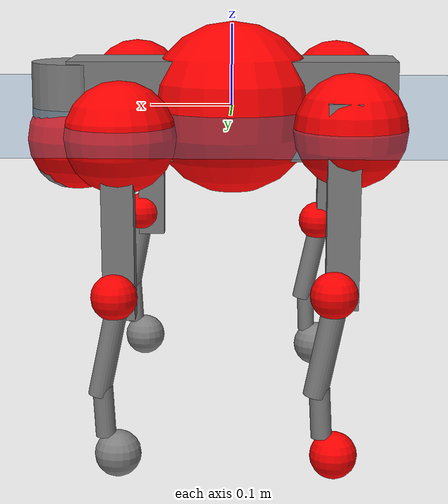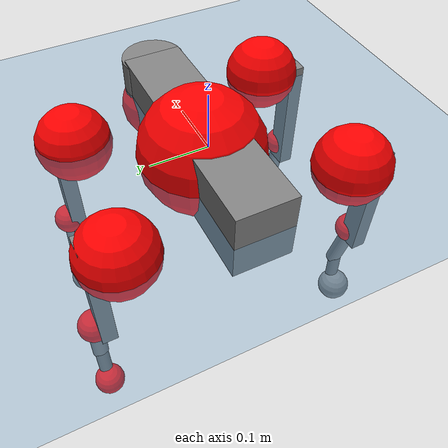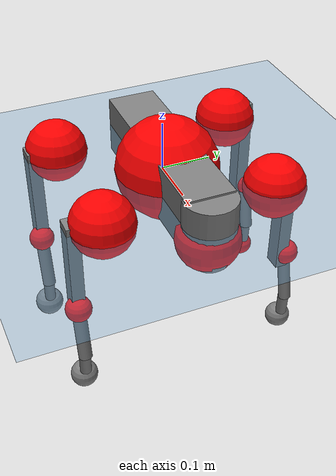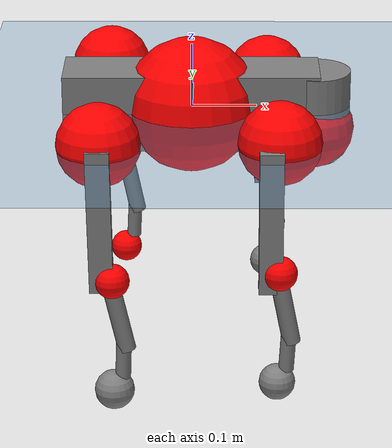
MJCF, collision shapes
<mujoco model="go2">
  <compiler angle="radian" assetdir="assets" balanceinertia="true" inertiafromgeom="false"/>

  <option timestep="0.005" density="1.2" viscosity="2e-05"/>

  <size nkey="1"/>

  <visual>
    <quality shadowsize="8192"/>
    <map shadowclip="0.5"/>
  </visual>

  <default>
    <default class="/">
      <geom contype="0" conaffinity="0" group="1" solref="-1000 -80"/>
      <site size="0.01 0.005 0.005" group="5"/>
      <general forcelimited="true" biastype="affine" gainprm="20" biasprm="0 -20 -0.5"/>
      <default class="go2">
        <joint armature="0.01" damping="0.01" frictionloss="0.2"/>
        <geom condim="1" margin="0.001"/>
        <default class="visual">
          <geom type="mesh" group="2"/>
        </default>
        <default class="collision">
          <geom group="3"/>
          <default class="foot">
            <geom size="0.022 0 0" condim="6" priority="1" friction="0.8 0.02 0.01" solimp="0.015 1 0.022"/>
          </default>
        </default>
        <default class="reward_collision_sphere">
          <geom group="5" rgba="1 0 0 1"/>
        </default>
      </default>
    </default>
  </default>

  <asset>
    <texture type="skybox" colorspace="auto" name="//unnamed_texture_0" builtin="gradient" rgb1="0.95 0.95 0.95" rgb2="0.95 0.95 0.95" width="100" height="600"/>
    <texture type="2d" colorspace="auto" name="texplane" builtin="checker" rgb1="0.345 0.575 0.748" rgb2="0.345 0.575 0.748" markrgb="1 1 1" width="512" height="512"/>
    <material name="MatPlane" class="/" texture="texplane" texuniform="true" texrepeat="2 2" specular="0.9"/>
    <material name="metal" class="/" rgba="0.9 0.95 0.95 1"/>
    <material name="black" class="/" rgba="0 0 0 1"/>
    <material name="white" class="/"/>
    <material name="gray" class="/" rgba="0.671705 0.692426 0.77427 1"/>
    <mesh name="base_0" class="/" file="base_0.obj"/>
    <mesh name="base_1" class="/" file="base_1.obj"/>
    <mesh name="base_2" class="/" file="base_2.obj"/>
    <mesh name="base_3" class="/" file="base_3.obj"/>
    <mesh name="base_4" class="/" file="base_4.obj"/>
    <mesh name="hip_0" class="/" file="hip_0.obj"/>
    <mesh name="hip_1" class="/" file="hip_1.obj"/>
    <mesh name="thigh_0" class="/" file="thigh_0.obj"/>
    <mesh name="thigh_1" class="/" file="thigh_1.obj"/>
    <mesh name="thigh_mirror_0" class="/" file="thigh_mirror_0.obj"/>
    <mesh name="thigh_mirror_1" class="/" file="thigh_mirror_1.obj"/>
    <mesh name="calf_0" class="/" file="calf_0.obj"/>
    <mesh name="calf_1" class="/" file="calf_1.obj"/>
    <mesh name="calf_mirror_0" class="/" file="calf_mirror_0.obj"/>
    <mesh name="calf_mirror_1" class="/" file="calf_mirror_1.obj"/>
    <mesh name="foot" class="/" file="foot.obj"/>
  </asset>

  <worldbody>
    <geom name="floor" class="/" size="100 100 0.125" type="plane" group="0" material="MatPlane"/>
    <light name="toplight_shadow" class="/" pos="0 0 5" dir="0.0990148 0.0990148 -0.990148" type="directional" ambient="0.04 0.04 0.04" diffuse="0.55 0.55 0.55" specular="0.12 0.12 0.12"/>
    <light name="toplight_fill" class="/" pos="0 0 5" dir="0.0990148 0.0990148 -0.990148" type="directional" castshadow="false" ambient="0.04 0.04 0.04" diffuse="0.3 0.3 0.3" specular="0.08 0.08 0.08"/>
    <body name="trunk" childclass="go2" pos="-0.000980606 0.0109229 -0.00132659" quat="1 2.70656e-05 4.74626e-05 -8.08278e-05">
      <inertial pos="0.00960554 0.011674 -0.00411598" quat="-0.0268473 0.758348 0.0278075 0.650703" mass="8.21867" diaginertia="0.017517 1.21389 0.0112359"/>
      <joint name="//unnamed_joint_0" type="free" armature="0" damping="0" frictionloss="0"/>
      <geom name="//unnamed_geom_1" class="visual" material="black" mesh="base_0"/>
      <geom name="//unnamed_geom_2" class="visual" material="black" mesh="base_1"/>
      <geom name="//unnamed_geom_3" class="visual" material="black" mesh="base_2"/>
      <geom name="//unnamed_geom_4" class="visual" material="white" mesh="base_3"/>
      <geom name="//unnamed_geom_5" class="visual" material="gray" mesh="base_4"/>
      <geom name="trunk_1" class="collision" size="0.198182 0.0492559 0.0600553" type="box"/>
      <geom name="trunk_2" class="collision" size="0.0526801 0.0474121" pos="0.194364 0 0.00856411" type="cylinder"/>
      <geom name="trunk_3" class="collision" size="0.0495193" pos="0.199819 0 -0.0513846"/>
      <geom name="//unnamed_geom_9" class="reward_collision_sphere" size="0.10536"/>
      <geom name="//unnamed_geom_10" class="reward_collision_sphere" size="0.0632161" pos="0.190954 0 -0.0385385"/>
      <site name="imu" pos="-0.0703699 -0.0410219 0.090777" size="0.010536"/>
      <camera name="track" pos="0 -3.24483 0" quat="0.707107 0.707107 0 0" mode="trackcom"/>
      <camera name="ego_camera" pos="0.212777 0 0.0385385" quat="-0.5 -0.5 0.5 0.5"/>
      <body name="FL_hip" pos="0.122533 0.0603038 -0.0129148" quat="0.999984 -0.000259679 0.00491518 0.00283361">
        <inertial pos="-0.00121117 0.00356377 -0.00750224" quat="0.499458 0.504576 0.500879 0.49504" mass="0.898903" diaginertia="0.000128314 0.00732992 0.000212815"/>
        <joint name="FL_hip_joint" pos="0 0 0" axis="0.99987 -0.0113707 0.0114453" range="-1.35635 0.891927" armature="0.0113618" damping="0.0619684" frictionloss="0.110631"/>
        <geom name="//unnamed_geom_11" class="visual" material="metal" mesh="hip_0"/>
        <geom name="//unnamed_geom_12" class="visual" material="gray" mesh="hip_1"/>
        <geom name="//unnamed_geom_13" class="collision" size="0.0484657 0.021072" pos="0 0.129793 0" quat="0.707107 0.707107 0 0" type="cylinder"/>
        <geom name="//unnamed_geom_14" class="reward_collision_sphere" size="0.0632161" pos="0 0.113569 0"/>
        <body name="FL_thigh" pos="0.000934052 0.139716 0.00316017" quat="0.999987 -0.00227841 -0.00296586 -0.0033202">
          <inertial pos="-0.0125405 -0.0448397 -0.0304659" quat="0.8114 0.0355586 -0.0296206 0.582656" mass="1.34441" diaginertia="0.000855795 0.066043 0.000426352"/>
          <joint name="FL_thigh_joint" pos="0 0 0" axis="-0.0443504 0.998436 -0.034049" stiffness="0.00193331" range="-1.7124 3.21935" armature="0.00444085" damping="0" frictionloss="0.150008"/>
          <geom name="//unnamed_geom_15" class="visual" material="metal" mesh="thigh_0"/>
          <geom name="//unnamed_geom_16" class="visual" material="gray" mesh="thigh_1"/>
          <geom name="//unnamed_geom_17" class="collision" size="0.112209 0.0129066 0.0179112" pos="0 0 -0.0912078" quat="0.707107 0 0.707107 0" type="box"/>
          <body name="FL_calf" pos="0.00503271 0.0134134 -0.176693" quat="0.999992 0.00383631 0.000346691 -0.000437347">
            <inertial pos="-0.00493002 -0.000887743 -0.106398" quat="0.71358 0.00244938 -0.00183791 0.700567" mass="0.292619" diaginertia="0.000252151 0.0137437 2.9183e-05"/>
            <joint name="FL_calf_joint" pos="0 0 0" axis="-0.00019643 0.999995 0.00311217" stiffness="0.00435197" range="-2.43339 -0.822854" armature="0.0150233" damping="0.00703459" frictionloss="0.200145"/>
            <geom name="//unnamed_geom_18" class="visual" material="gray" mesh="calf_0"/>
            <geom name="//unnamed_geom_19" class="visual" material="black" mesh="calf_1"/>
            <geom name="FL_calf0" class="collision" size="0.0126432 0.0632161" pos="0.00545582 0 -0.0513846" quat="0.994493 0 -0.104807 0" type="cylinder"/>
            <geom name="//unnamed_geom_21" class="collision" size="0.0115896 0.0342421" pos="0.0136396 0 -0.126749" quat="0.999688 0 0.0249974 0" type="cylinder"/>
            <geom name="//unnamed_geom_22" class="visual" pos="0 0 -0.182416" quat="1 0 0 0" material="black" mesh="foot"/>
            <geom name="FL_foot" class="foot" size="0.0265022" pos="-0.00136396 0 -0.182416"/>
            <geom name="//unnamed_geom_24" class="reward_collision_sphere" size="0.02634"/>
            <geom name="//unnamed_geom_25" class="reward_collision_sphere" size="0.02634" pos="-0.00136396 0 -0.182416"/>
            <site name="FL_foot" class="foot" pos="-0.00136396 0 -0.182416" size="0.010536"/>
          </body>
        </body>
      </body>
      <body name="FR_hip" pos="0.132885 -0.0683416 0.00643159" quat="0.999999 -0.00132176 -0.00063907 -0.00046933">
        <inertial pos="0.00196013 -0.006764 -0.00392088" quat="0.497804 0.502917 0.501563 0.497694" mass="0.902695" diaginertia="0.000136221 0.00788187 0.000187081"/>
        <joint name="FR_hip_joint" pos="0 0 0" axis="0.998914 -0.0284393 -0.0369103" stiffness="0.0282913" range="-1.03254 1.04689" armature="0.00837083" damping="0" frictionloss="0.153347"/>
        <geom name="//unnamed_geom_26" class="visual" pos="0 6.67312e-09 2.86224e-07" quat="4.63268e-05 1 0 0" material="metal" mesh="hip_0"/>
        <geom name="//unnamed_geom_27" class="visual" pos="0 1.08179e-08 -7.07942e-07" quat="4.63268e-05 1 0 0" material="gray" mesh="hip_1"/>
        <geom name="//unnamed_geom_28" class="collision" size="0.0484657 0.021072" pos="0 -0.129793 0" quat="0.707107 0.707107 0 0" type="cylinder"/>
        <geom name="//unnamed_geom_29" class="reward_collision_sphere" size="0.0632161" pos="0 -0.113569 0"/>
        <body name="FR_thigh" pos="-0.0133967 -0.169905 -0.0123036" quat="0.999993 0.000823207 -0.000194185 0.00354163">
          <inertial pos="0.0047441 0.0511738 -0.0272221" quat="0.572855 -0.0415496 0.0567583 0.816633" mass="1.00566" diaginertia="0.00073831 0.0565298 0.000371025"/>
          <joint name="FR_thigh_joint" pos="0 0 0" axis="-0.0117442 -0.99993 0.00138696" stiffness="0.0280265" range="-3.21544 1.58451" armature="0.00963774" damping="0" frictionloss="0.209882"/>
          <geom name="//unnamed_geom_30" class="visual" material="metal" mesh="thigh_mirror_0"/>
          <geom name="//unnamed_geom_31" class="visual" material="gray" mesh="thigh_mirror_1"/>
          <geom name="//unnamed_geom_32" class="collision" size="0.112209 0.0129066 0.0179112" pos="0 0 -0.0912078" quat="0.707107 0 0.707107 0" type="box"/>
          <body name="FR_calf" pos="0.0139525 -0.00102933 -0.173638" quat="0.999981 0.00346426 0.00361926 -0.00354522">
            <inertial pos="-0.00148184 0.00147234 -0.130822" quat="0.688492 -0.0145381 -0.0361885 0.724195" mass="0.278729" diaginertia="0.000210566 0.0167301 2.30267e-05"/>
            <joint name="FR_calf_joint" pos="0 0 0" axis="0.0627185 -0.997248 -0.0395432" stiffness="0.0481376" range="0.789586 2.74674" armature="0.00398221" damping="0" frictionloss="0.338553"/>
            <geom name="//unnamed_geom_33" class="visual" material="gray" mesh="calf_mirror_0"/>
            <geom name="//unnamed_geom_34" class="visual" material="black" mesh="calf_mirror_1"/>
            <geom name="FR_calf0" class="collision" size="0.0136968 0.0632161" pos="0.00681978 0 -0.0513846" quat="0.995004 0 -0.0998334 0" type="cylinder"/>
            <geom name="//unnamed_geom_36" class="collision" size="0.0115896 0.0342421" pos="0.0136396 0 -0.126749" quat="0.999688 0 0.0249974 0" type="cylinder"/>
            <geom name="//unnamed_geom_37" class="visual" pos="0 0 -0.182416" quat="1 0 0 0" material="black" mesh="foot"/>
            <geom name="FR_foot" class="foot" size="0.0277037" pos="-0.00136396 0 -0.182416"/>
            <geom name="//unnamed_geom_39" class="reward_collision_sphere" size="0.02634"/>
            <geom name="//unnamed_geom_40" class="reward_collision_sphere" size="0.02634" pos="-0.00136396 0 -0.182416"/>
            <site name="FR_foot" class="foot" pos="-0.00136396 0 -0.182416" size="0.010536"/>
          </body>
        </body>
      </body>
      <body name="RL_hip" pos="-0.133521 0.0774955 -0.00180654" quat="0.999996 -0.00139533 0.00149261 -0.00176903">
        <inertial pos="0.00427433 0.0147864 -0.00801689" quat="0.510389 0.478365 0.501657 0.50893" mass="0.687153" diaginertia="0.000121629 0.00619597 0.00020124"/>
        <joint name="RL_hip_joint" pos="0 0 0" axis="-0.999261 0.0376478 -0.0077154" stiffness="0.0199172" range="-1.1215 1.17282" armature="0.010626" damping="0.00525956" frictionloss="0.177577"/>
        <geom name="//unnamed_geom_41" class="visual" pos="1.51959e-09 0 2.97874e-07" quat="4.63268e-05 0 1 0" material="metal" mesh="hip_0"/>
        <geom name="//unnamed_geom_42" class="visual" pos="2.46344e-09 0 2.64172e-07" quat="4.63268e-05 0 1 0" material="gray" mesh="hip_1"/>
        <geom name="//unnamed_geom_43" class="collision" size="0.0484657 0.021072" pos="0 0.129793 0" quat="0.707107 0.707107 0 0" type="cylinder"/>
        <geom name="//unnamed_geom_44" class="reward_collision_sphere" size="0.0632161" pos="0 0.113569 0"/>
        <body name="RL_thigh" pos="0.00887088 0.152374 0.0142695" quat="0.999998 -0.00134975 -0.00109947 -5.16724e-05">
          <inertial pos="-0.00173272 -0.0347931 -0.0140623" quat="0.823912 0.0625781 -0.0539028 0.560667" mass="1.01058" diaginertia="0.000857547 0.0560926 0.000382011"/>
          <joint name="RL_thigh_joint" pos="0 0 0" axis="0.00923883 0.999949 0.00416644" stiffness="0.00811438" range="-0.306592 4.36028" armature="0.0133467" damping="0.0673967" frictionloss="0.225657"/>
          <geom name="//unnamed_geom_45" class="visual" material="metal" mesh="thigh_0"/>
          <geom name="//unnamed_geom_46" class="visual" material="gray" mesh="thigh_1"/>
          <geom name="//unnamed_geom_47" class="collision" size="0.112209 0.0129066 0.0179112" pos="0 0 -0.0912078" quat="0.707107 0 0.707107 0" type="box"/>
          <body name="RL_calf" pos="0.00889922 0.0152169 -0.186153" quat="0.999998 0.00151999 0.000946735 -0.000792447">
            <inertial pos="0.00559 0.000140364 -0.118906" quat="0.710697 0.00402763 -0.00593497 0.703461" mass="0.224209" diaginertia="0.000165656 0.0147865 2.21201e-05"/>
            <joint name="RL_calf_joint" pos="0 0 0" axis="-0.0469099 0.998848 -0.0101515" stiffness="0.0032316" range="-3.01918 -0.623764" armature="0.0106714" damping="0.0510896" frictionloss="0.206491"/>
            <geom name="//unnamed_geom_48" class="visual" material="gray" mesh="calf_0"/>
            <geom name="//unnamed_geom_49" class="visual" material="black" mesh="calf_1"/>
            <geom name="RL_calf0" class="collision" size="0.0136968 0.0632161" pos="0.00681978 0 -0.0513846" quat="0.995004 0 -0.0998334 0" type="cylinder"/>
            <geom name="//unnamed_geom_51" class="collision" size="0.0115896 0.0342421" pos="0.0136396 0 -0.126749" quat="0.999688 0 0.0249974 0" type="cylinder"/>
            <geom name="//unnamed_geom_52" class="visual" pos="0 0 -0.182416" quat="1 0 0 0" material="black" mesh="foot"/>
            <geom name="RL_foot" class="foot" size="0.0181167" pos="-0.00136396 0 -0.182416"/>
            <geom name="//unnamed_geom_54" class="reward_collision_sphere" size="0.02634"/>
            <geom name="//unnamed_geom_55" class="reward_collision_sphere" size="0.02634" pos="-0.00136396 0 -0.182416"/>
            <site name="RL_foot" class="foot" pos="-0.00136396 0 -0.182416" size="0.010536"/>
          </body>
        </body>
      </body>
      <body name="RR_hip" pos="-0.136887 -0.0733541 0.00649863" quat="0.999981 0.00427096 -0.00274956 0.00338658">
        <inertial pos="-0.000602316 -0.0152019 0.00923699" quat="0.507837 0.480066 0.501508 0.510027" mass="0.707441" diaginertia="0.000101389 0.00557331 0.000164983"/>
        <joint name="RR_hip_joint" pos="0 0 0" axis="-0.99801 -0.0511996 -0.0367996" range="-1.00704 1.3142" armature="0.0102217" damping="0.0316728" frictionloss="0.193366"/>
        <geom name="//unnamed_geom_56" class="visual" pos="-1.48703e-09 6.67312e-09 1.16504e-08" quat="2.14617e-09 4.63268e-05 4.63268e-05 -1" material="metal" mesh="hip_0"/>
        <geom name="//unnamed_geom_57" class="visual" pos="-2.54397e-09 1.08179e-08 9.72114e-07" quat="2.14617e-09 4.63268e-05 4.63268e-05 -1" material="gray" mesh="hip_1"/>
        <geom name="//unnamed_geom_58" class="collision" size="0.0484657 0.021072" pos="0 -0.129793 0" quat="0.707107 0.707107 0 0" type="cylinder"/>
        <geom name="//unnamed_geom_59" class="reward_collision_sphere" size="0.0632161" pos="0 -0.113569 0"/>
        <body name="RR_thigh" pos="0.000662336 -0.164946 -0.00854778" quat="0.999979 -0.0023321 -0.0034868 0.00490479">
          <inertial pos="-0.00282237 0.0492711 -0.0365217" quat="0.549303 -0.0179927 0.0676859 0.832683" mass="1.48361" diaginertia="0.000956896 0.0726474 0.000446339"/>
          <joint name="RR_thigh_joint" pos="0 0 0" axis="0.0637686 -0.99766 0.0246409" stiffness="0.0285301" range="-4.59099 0.361987" armature="0.0107495" damping="0.00212747" frictionloss="0.180033"/>
          <geom name="//unnamed_geom_60" class="visual" material="metal" mesh="thigh_mirror_0"/>
          <geom name="//unnamed_geom_61" class="visual" material="gray" mesh="thigh_mirror_1"/>
          <geom name="//unnamed_geom_62" class="collision" size="0.112209 0.0129066 0.0179112" pos="0 0 -0.0912078" quat="0.707107 0 0.707107 0" type="box"/>
          <body name="RR_calf" pos="0.0159976 -0.0039878 -0.18782" quat="0.999994 -0.00084493 0.000135061 -0.00336139">
            <inertial pos="-0.0112056 0.00165295 -0.116533" quat="0.690685 -0.0277183 0.00608223 0.722599" mass="0.287172" diaginertia="0.000184776 0.0175366 2.36338e-05"/>
            <joint name="RR_calf_joint" pos="0 0 0" axis="0.0157829 -0.997634 -0.0669054" stiffness="0.037776" range="1.07728 2.45233" armature="0.0173624" damping="0" frictionloss="0.217148"/>
            <geom name="//unnamed_geom_63" class="visual" material="gray" mesh="calf_mirror_0"/>
            <geom name="//unnamed_geom_64" class="visual" material="black" mesh="calf_mirror_1"/>
            <geom name="RR_calf0" class="collision" size="0.0136968 0.0632161" pos="0.00681978 0 -0.0513846" quat="0.995004 0 -0.0998334 0" type="cylinder"/>
            <geom name="//unnamed_geom_66" class="collision" size="0.0115896 0.0342421" pos="0.0136396 0 -0.126749" quat="0.999688 0 0.0249974 0" type="cylinder"/>
            <geom name="//unnamed_geom_67" class="visual" pos="0 0 -0.182416" quat="1 0 0 0" material="black" mesh="foot"/>
            <geom name="RR_foot" class="foot" size="0.0303402" pos="-0.00136396 0 -0.182416"/>
            <geom name="//unnamed_geom_69" class="reward_collision_sphere" size="0.02634"/>
            <geom name="//unnamed_geom_70" class="reward_collision_sphere" size="0.02634" pos="-0.00136396 0 -0.182416"/>
            <site name="RR_foot" class="foot" pos="-0.00136396 0 -0.182416" size="0.010536"/>
          </body>
        </body>
      </body>
    </body>
  </worldbody>

  <contact>
    <pair class="/" geom1="floor" geom2="FL_foot" name="//unnamed_contact_0"/>
    <pair class="/" geom1="floor" geom2="FR_foot" name="//unnamed_contact_1"/>
    <pair class="/" geom1="floor" geom2="RL_foot" name="//unnamed_contact_2"/>
    <pair class="/" geom1="floor" geom2="RR_foot" name="//unnamed_contact_3"/>
  </contact>

  <actuator>
    <general name="FL_hip" class="/" joint="FL_hip_joint" forcerange="-10.6182 10.6182" gainprm="13.8866" biasprm="0 -13.8866 -0.451195"/>
    <general name="FL_thigh" class="/" joint="FL_thigh_joint" forcerange="-33.9247 33.9247" gainprm="13.8866" biasprm="0 -13.8866 -0.451195"/>
    <general name="FL_calf" class="/" joint="FL_calf_joint" forcerange="-56.5538 56.5538" gainprm="13.8866" biasprm="0 -13.8866 -0.451195"/>
    <general name="FR_hip" class="/" joint="FR_hip_joint" forcerange="-12.1828 12.1828" gainprm="13.8866" biasprm="0 -13.8866 -0.451195"/>
    <general name="FR_thigh" class="/" joint="FR_thigh_joint" forcerange="-12.149 12.149" gainprm="13.8866" biasprm="0 -13.8866 -0.451195"/>
    <general name="FR_calf" class="/" joint="FR_calf_joint" forcerange="-31.0301 31.0301" gainprm="13.8866" biasprm="0 -13.8866 -0.451195"/>
    <general name="RL_hip" class="/" joint="RL_hip_joint" forcerange="-28.4831 28.4831" gainprm="13.8866" biasprm="0 -13.8866 -0.451195"/>
    <general name="RL_thigh" class="/" joint="RL_thigh_joint" forcerange="-23.1422 23.1422" gainprm="13.8866" biasprm="0 -13.8866 -0.451195"/>
    <general name="RL_calf" class="/" joint="RL_calf_joint" forcerange="-63.0301 63.0301" gainprm="13.8866" biasprm="0 -13.8866 -0.451195"/>
    <general name="RR_hip" class="/" joint="RR_hip_joint" forcerange="-38.5068 38.5068" gainprm="13.8866" biasprm="0 -13.8866 -0.451195"/>
    <general name="RR_thigh" class="/" joint="RR_thigh_joint" forcerange="-26.9828 26.9828" gainprm="13.8866" biasprm="0 -13.8866 -0.451195"/>
    <general name="RR_calf" class="/" joint="RR_calf_joint" forcerange="-51.3159 51.3159" gainprm="13.8866" biasprm="0 -13.8866 -0.451195"/>
  </actuator>

  <sensor>
    <gyro site="imu" name="imu_angular_velocity"/>
    <velocimeter site="imu" name="imu_linear_velocity"/>
    <framelinvel objtype="site" objname="FL_foot" name="FL_foot_global_linear_velocity"/>
    <framelinvel objtype="site" objname="FR_foot" name="FR_foot_global_linear_velocity"/>
    <framelinvel objtype="site" objname="RL_foot" name="RL_foot_global_linear_velocity"/>
    <framelinvel objtype="site" objname="RR_foot" name="RR_foot_global_linear_velocity"/>
  </sensor>

  <keyframe>
    <key name="home" qpos="0 0 0.325 1 0 0 0 0.1 0.8 -1.5 -0.1 -0.8 1.5 -0.1 0.8 -1.5 0.1 -0.8 1.5"/>
  </keyframe>
</mujoco>
